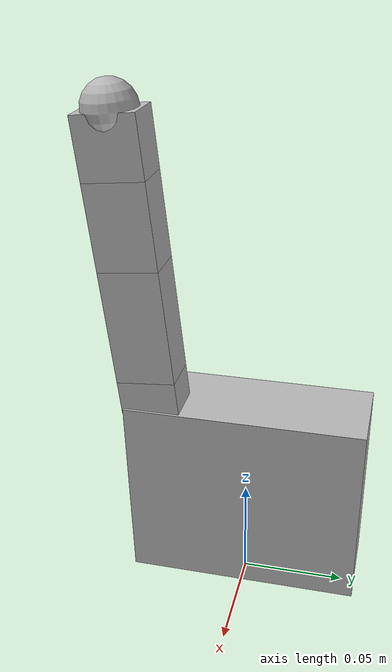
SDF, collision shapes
<?xml version='1.0'?>
<sdf version='1.6'>
  <model name='allegro_hand_right'>
     <link name='hand_root'>
      <pose frame=''>0 0 0 0 -0 0</pose>
      <inertial>
        <pose frame=''>0 0 0 0 -0 0</pose>
        <mass>0.4154</mass>
        <inertia>
          <ixx>    2.089e-03</ixx>
          <ixy>-0.003635e-03</ixy>
          <ixz>   0.2233e-03</ixz>
          <iyy>    1.829e-03</iyy>
          <iyz> -0.01756e-03</iyz>
          <izz>   0.4825e-03</izz>
        </inertia>
      </inertial>
      <collision name='hand_root_fixed_joint_lump__palm_link_collision'>
        <pose frame=''>-0.0093 0 0.0475 0 -0 0</pose>
        <geometry>
          <box>
            <size>0.0408 0.113 0.095</size>
          </box>
        </geometry>
      </collision>
      <visual name='hand_root_fixed_joint_lump__palm_link_visual'>
        <pose frame=''>0 0 0.095 0 -0 0</pose>
        <geometry>
          <mesh>
            <scale>1 1 1</scale>
            <uri>../meshes/base_link.obj</uri>
          </mesh>
        </geometry>
      </visual>
    </link>
    <link name='link_8'>
      <pose frame=''>0 -0.0435 0.093458 0.087267 -0 0</pose>
      <inertial>
        <pose frame=''>0 0 0 0 -0 0</pose>
        <mass>0.0119</mass>
        <inertia>
          <ixx>   1.954e-06</ixx>
          <ixy>0.003034e-06</ixy>
          <ixz> 0.08923e-06</ixz>
          <iyy>   1.179e-06</iyy>
          <iyz>-0.03707e-06</iyz>
          <izz>   1.497e-06</izz>
        </inertia>
      </inertial>
      <collision name='link_8_collision'>
        <pose frame=''>0 0 0.0082 0 -0 0</pose>
        <geometry>
          <box>
            <size>0.0196 0.0275 0.0164</size>
          </box>
        </geometry>
      </collision>
      <visual name='link_8_visual'>
        <pose frame=''>0 0 0 0 -0 0</pose>
        <geometry>
          <mesh>
            <scale>1 1 1</scale>
            <uri>../meshes/link_0.0.obj</uri>
          </mesh>
        </geometry>
      </visual>
    </link>
    <joint name='joint_8' type='revolute'>
      <child>link_8</child>
      <parent>hand_root</parent>
      <axis>
        <xyz>0 -0.087156 0.996195</xyz>
        <limit>
          <lower>-0.47</lower>
          <upper>0.47</upper>
          <effort>0.7</effort>
        </limit>
        <dynamics>
          <damping>1.5e-2</damping>
        </dynamics>
        <use_parent_model_frame>1</use_parent_model_frame>
      </axis>
    </joint>
   <link name='link_9'>
      <pose frame=''>0 -0.044929 0.109796 0.087267 -0 0</pose>
      <inertial>
        <pose frame=''>0 0 0 0 -0 0</pose>
        <mass>0.065</mass>
        <inertia>
          <ixx>  7.192e-05</ixx>
          <ixy>          0</ixy>
          <ixz>          0</ixz>
          <iyy>  7.438e-05</iyy>
          <iyz>0.07322e-05</iyz>
          <izz> 0.5406e-05</izz>
        </inertia>
      </inertial>
      <collision name='link_9_collision'>
        <pose frame=''>0 0 0.027 0 -0 0</pose>
        <geometry>
          <box>
            <size>0.0196 0.0275 0.054</size>
          </box>
        </geometry>
      </collision>
      <visual name='link_9_visual'>
        <pose frame=''>0 0 0 0 -0 0</pose>
        <geometry>
          <mesh>
            <scale>1 1 1</scale>
            <uri>../meshes/link_1.0.obj</uri>
          </mesh>
        </geometry>
      </visual>
    </link>
    <joint name='joint_9' type='revolute'>
      <child>link_9</child>
      <parent>link_8</parent>
      <axis>
        <xyz>0 0.996195 0.087156</xyz>
        <limit>
          <lower>-0.196</lower>
          <upper>1.61</upper>
          <effort>0.7</effort>
        </limit>
        <dynamics>
          <damping>1.5e-2</damping>
        </dynamics>
        <use_parent_model_frame>1</use_parent_model_frame>
      </axis>
    </joint>
    <link name='link_10'>
      <pose frame=''>0 -0.049636 0.16359 0.087267 -0 0</pose>
      <inertial>
        <pose frame=''>0 0 0 0 -0 0</pose>
        <mass>0.0355</mass>
        <inertia>
          <ixx>     3.169e-05</ixx>
          <ixy> 0.0001071e-05</ixy>
          <ixz>-0.0004913e-05</ixz>
          <iyy>     3.105e-05</iyy>
          <iyz>  0.003875e-05</iyz>
          <izz>    0.3203e-05</izz>
        </inertia>
      </inertial>
      <collision name='link_10_collision'>
        <pose frame=''>0 0 0.0192 0 -0 0</pose>
        <geometry>
          <box>
            <size>0.0196 0.0275 0.0384</size>
          </box>
        </geometry>
      </collision>
      <visual name='link_10_visual'>
        <pose frame=''>0 0 0 0 -0 0</pose>
        <geometry>
          <mesh>
            <scale>1 1 1</scale>
            <uri>../meshes/link_2.0.obj</uri>
          </mesh>
        </geometry>
      </visual>
    </link>
    <joint name='joint_10' type='revolute'>
      <child>link_10</child>
      <parent>link_9</parent>
      <axis>
        <xyz>0 0.996195 0.087156</xyz>
        <limit>
          <lower>-0.174</lower>
          <upper>1.709</upper>
          <effort>0.7</effort>
        </limit>
        <dynamics>
          <damping>1.5e-2</damping>
        </dynamics>
        <use_parent_model_frame>1</use_parent_model_frame>
      </axis>
    </joint>
    <link name='link_11'>
      <pose frame=''>0 -0.052983 0.201844 0.087267 -0 0</pose>
      <inertial>
        <pose frame=''>0 0 0 0 -0 0</pose>
        <mass>0.0264</mass>
        <inertia>
          <ixx>   1.263e-05</ixx>
          <ixy> 0.00021e-05</ixy>
          <ixz>-0.00098e-05</ixz>
          <iyy>   1.182e-05</iyy>
          <iyz> -0.0013e-05</iyz>
          <izz>  0.2484e-05</izz>
        </inertia>
      </inertial>
      <collision name='link_11_collision'>
        <pose frame=''>0 0 0.01335 0 -0 0</pose>
        <geometry>
          <box>
            <size>0.0196 0.0275 0.0267</size>
          </box>
        </geometry>
      </collision>
      <collision name='link_11_tip_collision_1'>
        <pose frame=''>0 0 0.0267 0 -0 0</pose>
        <geometry>
          <sphere>
            <radius>0.012</radius>
          </sphere>
        </geometry>
      </collision>
      <visual name='link_11_visual'>
        <pose frame=''>0 0 0 0 -0 0</pose>
        <geometry>
          <mesh>
            <scale>1 1 1</scale>
            <uri>../meshes/link_3.0.obj</uri>
          </mesh>
        </geometry>
      </visual>
      <visual name='link_11_tip_visual_1'>
        <pose frame=''>0 0 0.0267 0 -0 0</pose>
        <geometry>
          <mesh>
            <scale>1 1 1</scale>
            <uri>../meshes/link_3.0_tip.obj</uri>
          </mesh>
        </geometry>
      </visual>
    </link>
    <joint name='joint_11' type='revolute'>
      <child>link_11</child>
      <parent>link_10</parent>
      <axis>
        <xyz>0 0.996195 0.087156</xyz>
        <limit>
          <lower>-0.227</lower>
          <upper>1.618</upper>
          <effort>0.7</effort>
        </limit>
        <dynamics>
          <damping>1.5e-2</damping>
        </dynamics>
        <use_parent_model_frame>1</use_parent_model_frame>
      </axis>
    </joint>
  </model>
</sdf>
